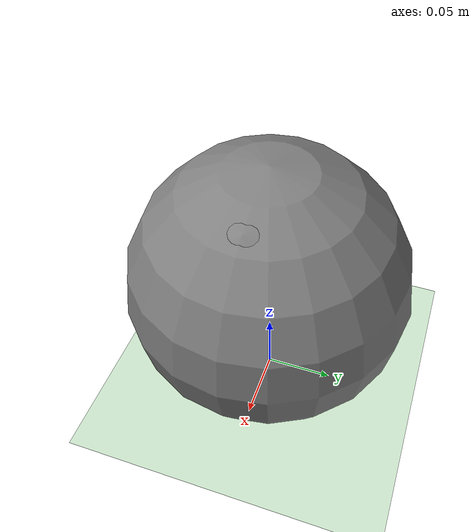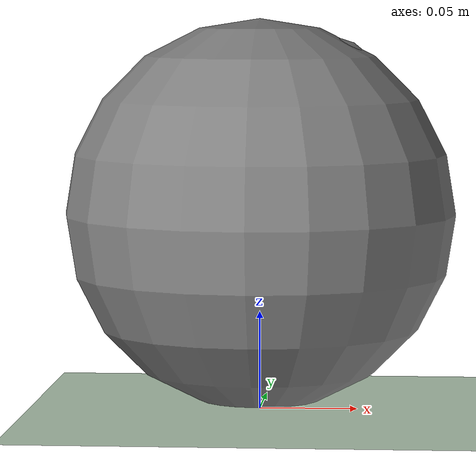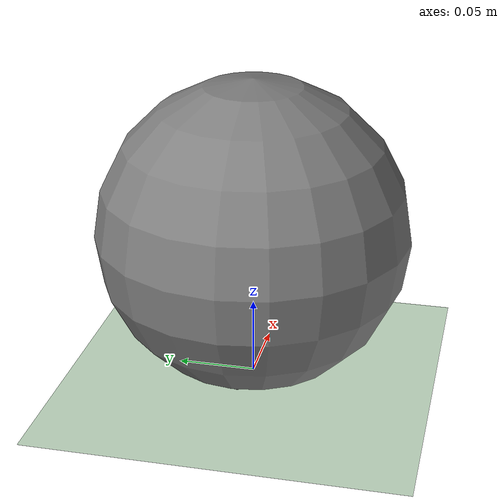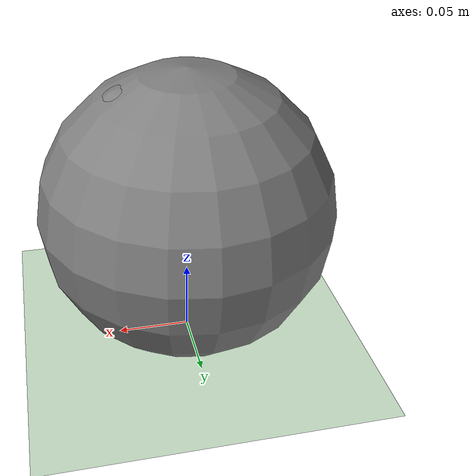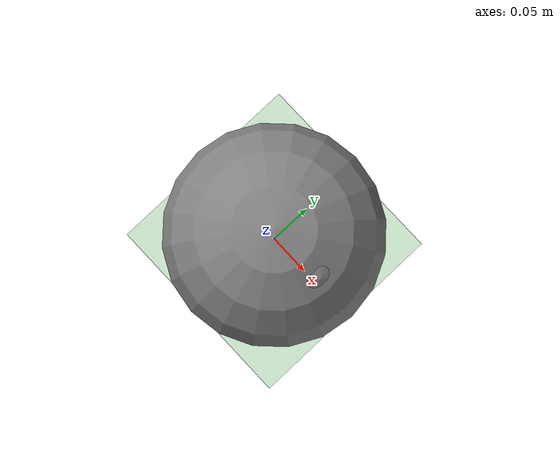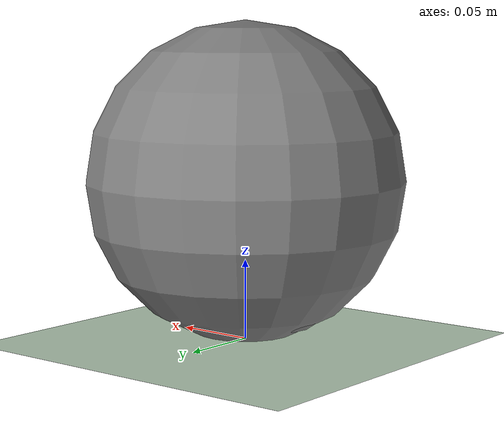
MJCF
<!-- Comments: Achieving simulation stability required: a) Fixing the rotation of the leg, b) Limiting the control range from 0 to 1 for the pusher. Playing with contact parameters didn't help. -->

<mujoco model="framed hopper">
    <compiler angle="radian"/>
	<option timestep="0.002" iterations="1" ls_iterations="4" solver="Newton" gravity="0 0 -9.81">
		<flag eulerdamp="disable"/>
	</option>
    <worldbody>
        <light cutoff="100" diffuse="1 1 1" dir="-0 0 -1.3" directional="true" exponent="1" pos="0 0 1.3" specular=".1 .1 .1"/>
        <geom conaffinity="1" condim="3" name="floor" pos="0 0 0" rgba="0.8 0.9 0.8 1" size="20 20 .125" type="plane" material="MatPlane"/>
        <body name="ball" pos="0 0 0.1">
            <camera name="track" pos="0 -3 0.3" xyaxes="1 0 0 0 1 5" mode="track"/>
            <!--joint axis="1 0 0" pos="0 0 -0.1" limited="false" name="rootx" type="slide"/-->
            <joint axis="0 0 1" pos="0 0 -0.1" limited="false" name="rootz" type="slide"/>
            <geom name="ball_geom" size="0.1" type="sphere" conaffinity="0" contype="1"/>
            <body name="leg_push" pos="0 0 0" axisangle ="0 1 0 0.5">
                <joint axis="0 0 -1" name="leg_joint_push" pos="0 0 0" range="0.0 0.2" type="slide"/>
                <geom friction="0.8" name="leg_geom" size="0.025 0.075" type="capsule" conaffinity="0" contype="1"/>
            </body>
        </body>
    </worldbody>
    <actuator>
        <motor ctrllimited="true" ctrlrange="0.0 1.0" gear="200.0" joint="leg_joint_push"/>
    </actuator>
    <asset>
        <texture type="skybox" builtin="gradient" rgb1=".4 .5 .6" rgb2="0 0 0"
            width="100" height="100"/>
        <texture builtin="flat" height="1278" mark="cross" markrgb="1 1 1" name="texgeom" random="0.01" rgb1="0.8 0.6 0.4" rgb2="0.8 0.6 0.4" type="cube" width="127"/>
        <texture type="2d" name="texplane" builtin="checker" mark="edge" rgb1="0.2 0.3 0.4" rgb2="0.1 0.2 0.3"
        markrgb="0.8 0.8 0.8" width="100" height="100"/>
        <material name="MatPlane" texture="texplane" texuniform="true" texrepeat="5 5" reflectance="0.2"/>
        <material name="geom" texture="texgeom" texuniform="true"/>
    </asset>

    <keyframe>
        <!--key name="home" qpos="0.0 0.0 0.0" /-->
        <key name="home" qpos="0.0 0.0" />
    </keyframe>
</mujoco>
